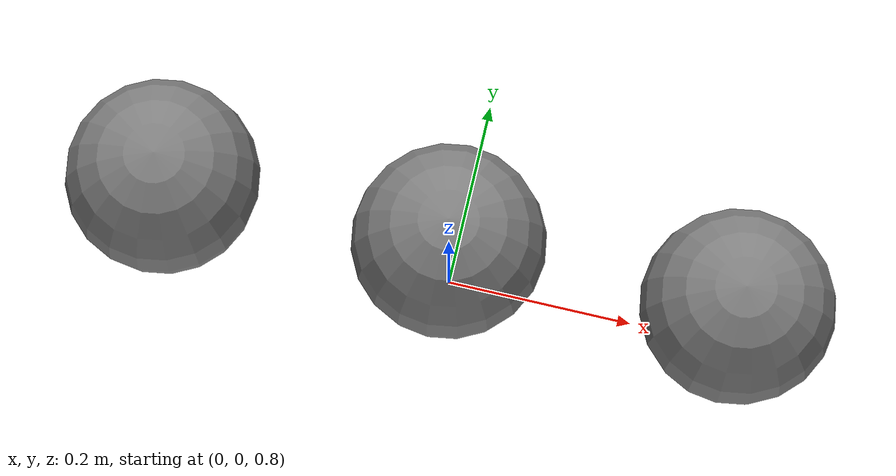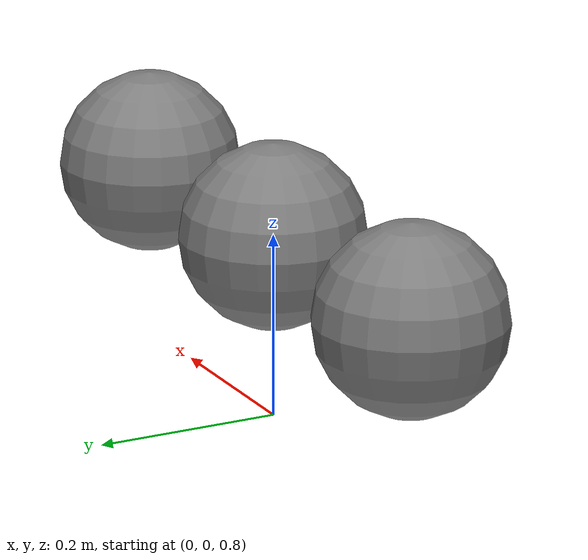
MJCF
<mujoco model="t09">
            <worldbody>
                <body name="b1" pos="0 0 1">
                    <joint type="free"/>
                    <geom name="g1" type="sphere" size="0.1" pos="-0.3 0 0" mass="1"/>
                    <geom name="g2" type="sphere" size="0.1" pos="0 0 0" mass="1"/>
                    <geom name="g3" type="sphere" size="0.1" pos="0.3 0 0" mass="1"/>
                    <site name="touch_site" pos="0 0 0"/>
                </body>
            </worldbody>
            <sensor>
                <touch name="t" site="touch_site"/>
            </sensor>
        </mujoco>
